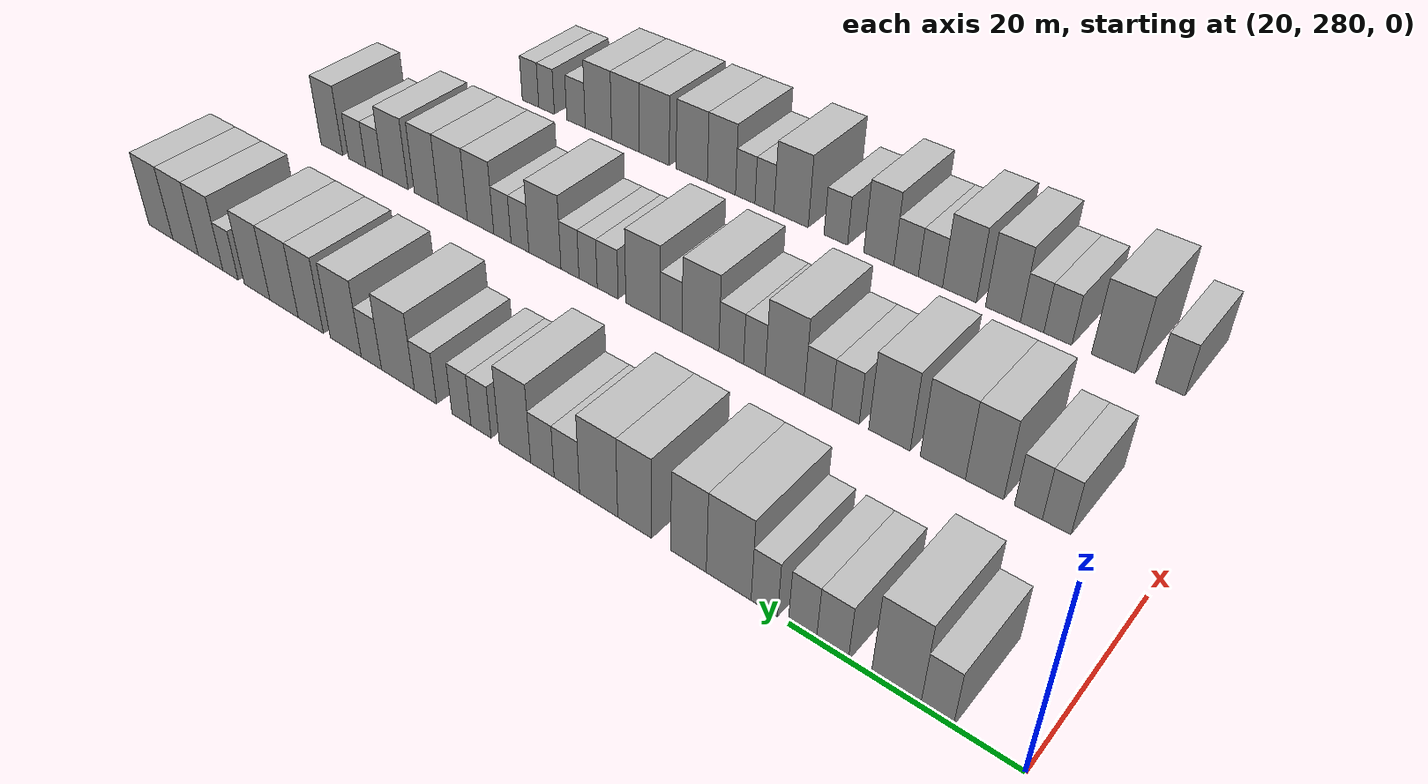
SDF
<sdf version="1.6">
 <world name="default">
  <model name="building_167">
   <static>1</static>
   <pose>25.0000 287.0764 0 0.000000 0.000000 0.000000</pose>
   <link name="link">
    <pose>0 0 3.00 0 0 0</pose>
    <collision name="collision"><geometry><box><size>10.0000 2.7010 6.0000</size></box></geometry></collision>
    <visual name="visual">
     <cast_shadows>0</cast_shadows>
     <geometry><box><size>10.0000 2.7010 6.0000</size></box></geometry>
     <material>
      <script>
       <uri>model://HANNAS_wall/materials/scripts</uri>
       <uri>model://HANNAS_wall/materials/textures</uri>
       <name>vrc/HANNAS_wall</name>
      </script>
     </material>
    </visual>
   </link>
  </model>
  <model name="building_168">
   <static>1</static>
   <pose>25.0000 290.5283 0 0.000000 0.000000 0.000000</pose>
   <link name="link">
    <pose>0 0 4.50 0 0 0</pose>
    <collision name="collision"><geometry><box><size>10.0000 4.2030 9.0000</size></box></geometry></collision>
    <visual name="visual">
     <cast_shadows>0</cast_shadows>
     <geometry><box><size>10.0000 4.2030 9.0000</size></box></geometry>
     <material>
      <script>
       <uri>model://HANNAS_wall/materials/scripts</uri>
       <uri>model://HANNAS_wall/materials/textures</uri>
       <name>vrc/HANNAS_wall</name>
      </script>
     </material>
    </visual>
   </link>
  </model>
  <model name="building_169">
   <static>1</static>
   <pose>25.0000 296.0642 0 0.000000 0.000000 0.000000</pose>
   <link name="link">
    <pose>0 0 3.00 0 0 0</pose>
    <collision name="collision"><geometry><box><size>10.0000 2.8687 6.0000</size></box></geometry></collision>
    <visual name="visual">
     <cast_shadows>0</cast_shadows>
     <geometry><box><size>10.0000 2.8687 6.0000</size></box></geometry>
     <material>
      <script>
       <uri>model://HANNAS_wall/materials/scripts</uri>
       <uri>model://HANNAS_wall/materials/textures</uri>
       <name>vrc/HANNAS_wall</name>
      </script>
     </material>
    </visual>
   </link>
  </model>
  <model name="building_170">
   <static>1</static>
   <pose>25.0000 298.7918 0 0.000000 0.000000 0.000000</pose>
   <link name="link">
    <pose>0 0 3.00 0 0 0</pose>
    <collision name="collision"><geometry><box><size>10.0000 2.5866 6.0000</size></box></geometry></collision>
    <visual name="visual">
     <cast_shadows>0</cast_shadows>
     <geometry><box><size>10.0000 2.5866 6.0000</size></box></geometry>
     <material>
      <script>
       <uri>model://HANNAS_wall/materials/scripts</uri>
       <uri>model://HANNAS_wall/materials/textures</uri>
       <name>vrc/HANNAS_wall</name>
      </script>
     </material>
    </visual>
   </link>
  </model>
  <model name="building_171">
   <static>1</static>
   <pose>25.0000 302.3446 0 0.000000 0.000000 0.000000</pose>
   <link name="link">
    <pose>0 0 3.00 0 0 0</pose>
    <collision name="collision"><geometry><box><size>10.0000 2.5190 6.0000</size></box></geometry></collision>
    <visual name="visual">
     <cast_shadows>0</cast_shadows>
     <geometry><box><size>10.0000 2.5190 6.0000</size></box></geometry>
     <material>
      <script>
       <uri>model://HANNAS_wall/materials/scripts</uri>
       <uri>model://HANNAS_wall/materials/textures</uri>
       <name>vrc/HANNAS_wall</name>
      </script>
     </material>
    </visual>
   </link>
  </model>
  <model name="building_172">
   <static>1</static>
   <pose>25.0000 305.8086 0 0.000000 0.000000 0.000000</pose>
   <link name="link">
    <pose>0 0 4.50 0 0 0</pose>
    <collision name="collision"><geometry><box><size>10.0000 4.4089 9.0000</size></box></geometry></collision>
    <visual name="visual">
     <cast_shadows>0</cast_shadows>
     <geometry><box><size>10.0000 4.4089 9.0000</size></box></geometry>
     <material>
      <script>
       <uri>model://HANNAS_wall/materials/scripts</uri>
       <uri>model://HANNAS_wall/materials/textures</uri>
       <name>vrc/HANNAS_wall</name>
      </script>
     </material>
    </visual>
   </link>
  </model>
  <model name="building_173">
   <static>1</static>
   <pose>25.0000 309.8165 0 0.000000 0.000000 0.000000</pose>
   <link name="link">
    <pose>0 0 4.50 0 0 0</pose>
    <collision name="collision"><geometry><box><size>10.0000 3.6070 9.0000</size></box></geometry></collision>
    <visual name="visual">
     <cast_shadows>0</cast_shadows>
     <geometry><box><size>10.0000 3.6070 9.0000</size></box></geometry>
     <material>
      <script>
       <uri>model://HANNAS_wall/materials/scripts</uri>
       <uri>model://HANNAS_wall/materials/textures</uri>
       <name>vrc/HANNAS_wall</name>
      </script>
     </material>
    </visual>
   </link>
  </model>
  <model name="building_174">
   <static>1</static>
   <pose>25.0000 315.4411 0 0.000000 0.000000 0.000000</pose>
   <link name="link">
    <pose>0 0 4.50 0 0 0</pose>
    <collision name="collision"><geometry><box><size>10.0000 3.6422 9.0000</size></box></geometry></collision>
    <visual name="visual">
     <cast_shadows>0</cast_shadows>
     <geometry><box><size>10.0000 3.6422 9.0000</size></box></geometry>
     <material>
      <script>
       <uri>model://HANNAS_wall/materials/scripts</uri>
       <uri>model://HANNAS_wall/materials/textures</uri>
       <name>vrc/HANNAS_wall</name>
      </script>
     </material>
    </visual>
   </link>
  </model>
  <model name="building_175">
   <static>1</static>
   <pose>25.0000 319.3794 0 0.000000 0.000000 0.000000</pose>
   <link name="link">
    <pose>0 0 4.50 0 0 0</pose>
    <collision name="collision"><geometry><box><size>10.0000 4.2343 9.0000</size></box></geometry></collision>
    <visual name="visual">
     <cast_shadows>0</cast_shadows>
     <geometry><box><size>10.0000 4.2343 9.0000</size></box></geometry>
     <material>
      <script>
       <uri>model://HANNAS_wall/materials/scripts</uri>
       <uri>model://HANNAS_wall/materials/textures</uri>
       <name>vrc/HANNAS_wall</name>
      </script>
     </material>
    </visual>
   </link>
  </model>
  <model name="building_176">
   <static>1</static>
   <pose>25.0000 322.9483 0 0.000000 0.000000 0.000000</pose>
   <link name="link">
    <pose>0 0 3.00 0 0 0</pose>
    <collision name="collision"><geometry><box><size>10.0000 2.9036 6.0000</size></box></geometry></collision>
    <visual name="visual">
     <cast_shadows>0</cast_shadows>
     <geometry><box><size>10.0000 2.9036 6.0000</size></box></geometry>
     <material>
      <script>
       <uri>model://HANNAS_wall/materials/scripts</uri>
       <uri>model://HANNAS_wall/materials/textures</uri>
       <name>vrc/HANNAS_wall</name>
      </script>
     </material>
    </visual>
   </link>
  </model>
  <model name="building_177">
   <static>1</static>
   <pose>25.0000 325.7795 0 0.000000 0.000000 0.000000</pose>
   <link name="link">
    <pose>0 0 3.00 0 0 0</pose>
    <collision name="collision"><geometry><box><size>10.0000 2.7588 6.0000</size></box></geometry></collision>
    <visual name="visual">
     <cast_shadows>0</cast_shadows>
     <geometry><box><size>10.0000 2.7588 6.0000</size></box></geometry>
     <material>
      <script>
       <uri>model://HANNAS_wall/materials/scripts</uri>
       <uri>model://HANNAS_wall/materials/textures</uri>
       <name>vrc/HANNAS_wall</name>
      </script>
     </material>
    </visual>
   </link>
  </model>
  <model name="building_178">
   <static>1</static>
   <pose>25.0000 329.0461 0 0.000000 0.000000 0.000000</pose>
   <link name="link">
    <pose>0 0 4.50 0 0 0</pose>
    <collision name="collision"><geometry><box><size>10.0000 3.7744 9.0000</size></box></geometry></collision>
    <visual name="visual">
     <cast_shadows>0</cast_shadows>
     <geometry><box><size>10.0000 3.7744 9.0000</size></box></geometry>
     <material>
      <script>
       <uri>model://HANNAS_wall/materials/scripts</uri>
       <uri>model://HANNAS_wall/materials/textures</uri>
       <name>vrc/HANNAS_wall</name>
      </script>
     </material>
    </visual>
   </link>
  </model>
  <model name="building_179">
   <static>1</static>
   <pose>25.0000 333.1919 0 0.000000 0.000000 0.000000</pose>
   <link name="link">
    <pose>0 0 3.00 0 0 0</pose>
    <collision name="collision"><geometry><box><size>10.0000 2.5172 6.0000</size></box></geometry></collision>
    <visual name="visual">
     <cast_shadows>0</cast_shadows>
     <geometry><box><size>10.0000 2.5172 6.0000</size></box></geometry>
     <material>
      <script>
       <uri>model://HANNAS_wall/materials/scripts</uri>
       <uri>model://HANNAS_wall/materials/textures</uri>
       <name>vrc/HANNAS_wall</name>
      </script>
     </material>
    </visual>
   </link>
  </model>
  <model name="building_180">
   <static>1</static>
   <pose>25.0000 335.6580 0 0.000000 0.000000 0.000000</pose>
   <link name="link">
    <pose>0 0 3.00 0 0 0</pose>
    <collision name="collision"><geometry><box><size>10.0000 2.4151 6.0000</size></box></geometry></collision>
    <visual name="visual">
     <cast_shadows>0</cast_shadows>
     <geometry><box><size>10.0000 2.4151 6.0000</size></box></geometry>
     <material>
      <script>
       <uri>model://HANNAS_wall/materials/scripts</uri>
       <uri>model://HANNAS_wall/materials/textures</uri>
       <name>vrc/HANNAS_wall</name>
      </script>
     </material>
    </visual>
   </link>
  </model>
  <model name="building_181">
   <static>1</static>
   <pose>25.0000 340.3247 0 0.000000 0.000000 0.000000</pose>
   <link name="link">
    <pose>0 0 3.00 0 0 0</pose>
    <collision name="collision"><geometry><box><size>10.0000 2.9182 6.0000</size></box></geometry></collision>
    <visual name="visual">
     <cast_shadows>0</cast_shadows>
     <geometry><box><size>10.0000 2.9182 6.0000</size></box></geometry>
     <material>
      <script>
       <uri>model://HANNAS_wall/materials/scripts</uri>
       <uri>model://HANNAS_wall/materials/textures</uri>
       <name>vrc/HANNAS_wall</name>
      </script>
     </material>
    </visual>
   </link>
  </model>
  <model name="building_182">
   <static>1</static>
   <pose>25.0000 344.0215 0 0.000000 0.000000 0.000000</pose>
   <link name="link">
    <pose>0 0 4.50 0 0 0</pose>
    <collision name="collision"><geometry><box><size>10.0000 4.4755 9.0000</size></box></geometry></collision>
    <visual name="visual">
     <cast_shadows>0</cast_shadows>
     <geometry><box><size>10.0000 4.4755 9.0000</size></box></geometry>
     <material>
      <script>
       <uri>model://HANNAS_wall/materials/scripts</uri>
       <uri>model://HANNAS_wall/materials/textures</uri>
       <name>vrc/HANNAS_wall</name>
      </script>
     </material>
    </visual>
   </link>
  </model>
  <model name="building_183">
   <static>1</static>
   <pose>25.0000 347.6754 0 0.000000 0.000000 0.000000</pose>
   <link name="link">
    <pose>0 0 3.00 0 0 0</pose>
    <collision name="collision"><geometry><box><size>10.0000 2.8323 6.0000</size></box></geometry></collision>
    <visual name="visual">
     <cast_shadows>0</cast_shadows>
     <geometry><box><size>10.0000 2.8323 6.0000</size></box></geometry>
     <material>
      <script>
       <uri>model://HANNAS_wall/materials/scripts</uri>
       <uri>model://HANNAS_wall/materials/textures</uri>
       <name>vrc/HANNAS_wall</name>
      </script>
     </material>
    </visual>
   </link>
  </model>
  <model name="building_184">
   <static>1</static>
   <pose>25.0000 351.3204 0 0.000000 0.000000 0.000000</pose>
   <link name="link">
    <pose>0 0 4.50 0 0 0</pose>
    <collision name="collision"><geometry><box><size>10.0000 4.4579 9.0000</size></box></geometry></collision>
    <visual name="visual">
     <cast_shadows>0</cast_shadows>
     <geometry><box><size>10.0000 4.4579 9.0000</size></box></geometry>
     <material>
      <script>
       <uri>model://HANNAS_wall/materials/scripts</uri>
       <uri>model://HANNAS_wall/materials/textures</uri>
       <name>vrc/HANNAS_wall</name>
      </script>
     </material>
    </visual>
   </link>
  </model>
  <model name="building_185">
   <static>1</static>
   <pose>25.0000 356.4243 0 0.000000 0.000000 0.000000</pose>
   <link name="link">
    <pose>0 0 4.50 0 0 0</pose>
    <collision name="collision"><geometry><box><size>10.0000 3.7499 9.0000</size></box></geometry></collision>
    <visual name="visual">
     <cast_shadows>0</cast_shadows>
     <geometry><box><size>10.0000 3.7499 9.0000</size></box></geometry>
     <material>
      <script>
       <uri>model://HANNAS_wall/materials/scripts</uri>
       <uri>model://HANNAS_wall/materials/textures</uri>
       <name>vrc/HANNAS_wall</name>
      </script>
     </material>
    </visual>
   </link>
  </model>
  <model name="building_186">
   <static>1</static>
   <pose>25.0000 360.4903 0 0.000000 0.000000 0.000000</pose>
   <link name="link">
    <pose>0 0 4.50 0 0 0</pose>
    <collision name="collision"><geometry><box><size>10.0000 4.3821 9.0000</size></box></geometry></collision>
    <visual name="visual">
     <cast_shadows>0</cast_shadows>
     <geometry><box><size>10.0000 4.3821 9.0000</size></box></geometry>
     <material>
      <script>
       <uri>model://HANNAS_wall/materials/scripts</uri>
       <uri>model://HANNAS_wall/materials/textures</uri>
       <name>vrc/HANNAS_wall</name>
      </script>
     </material>
    </visual>
   </link>
  </model>
  <model name="building_187">
   <static>1</static>
   <pose>25.0000 364.7096 0 0.000000 0.000000 0.000000</pose>
   <link name="link">
    <pose>0 0 4.50 0 0 0</pose>
    <collision name="collision"><geometry><box><size>10.0000 4.0564 9.0000</size></box></geometry></collision>
    <visual name="visual">
     <cast_shadows>0</cast_shadows>
     <geometry><box><size>10.0000 4.0564 9.0000</size></box></geometry>
     <material>
      <script>
       <uri>model://HANNAS_wall/materials/scripts</uri>
       <uri>model://HANNAS_wall/materials/textures</uri>
       <name>vrc/HANNAS_wall</name>
      </script>
     </material>
    </visual>
   </link>
  </model>
  <model name="building_188">
   <static>1</static>
   <pose>25.0000 368.9909 0 0.000000 0.000000 0.000000</pose>
   <link name="link">
    <pose>0 0 3.00 0 0 0</pose>
    <collision name="collision"><geometry><box><size>10.0000 2.5064 6.0000</size></box></geometry></collision>
    <visual name="visual">
     <cast_shadows>0</cast_shadows>
     <geometry><box><size>10.0000 2.5064 6.0000</size></box></geometry>
     <material>
      <script>
       <uri>model://HANNAS_wall/materials/scripts</uri>
       <uri>model://HANNAS_wall/materials/textures</uri>
       <name>vrc/HANNAS_wall</name>
      </script>
     </material>
    </visual>
   </link>
  </model>
  <model name="building_189">
   <static>1</static>
   <pose>25.0000 372.2982 0 0.000000 0.000000 0.000000</pose>
   <link name="link">
    <pose>0 0 4.50 0 0 0</pose>
    <collision name="collision"><geometry><box><size>10.0000 4.1082 9.0000</size></box></geometry></collision>
    <visual name="visual">
     <cast_shadows>0</cast_shadows>
     <geometry><box><size>10.0000 4.1082 9.0000</size></box></geometry>
     <material>
      <script>
       <uri>model://HANNAS_wall/materials/scripts</uri>
       <uri>model://HANNAS_wall/materials/textures</uri>
       <name>vrc/HANNAS_wall</name>
      </script>
     </material>
    </visual>
   </link>
  </model>
  <model name="building_190">
   <static>1</static>
   <pose>25.0000 376.5505 0 0.000000 0.000000 0.000000</pose>
   <link name="link">
    <pose>0 0 4.50 0 0 0</pose>
    <collision name="collision"><geometry><box><size>10.0000 4.3965 9.0000</size></box></geometry></collision>
    <visual name="visual">
     <cast_shadows>0</cast_shadows>
     <geometry><box><size>10.0000 4.3965 9.0000</size></box></geometry>
     <material>
      <script>
       <uri>model://HANNAS_wall/materials/scripts</uri>
       <uri>model://HANNAS_wall/materials/textures</uri>
       <name>vrc/HANNAS_wall</name>
      </script>
     </material>
    </visual>
   </link>
  </model>
  <model name="building_191">
   <static>1</static>
   <pose>25.0000 380.8715 0 0.000000 0.000000 0.000000</pose>
   <link name="link">
    <pose>0 0 4.50 0 0 0</pose>
    <collision name="collision"><geometry><box><size>10.0000 4.2454 9.0000</size></box></geometry></collision>
    <visual name="visual">
     <cast_shadows>0</cast_shadows>
     <geometry><box><size>10.0000 4.2454 9.0000</size></box></geometry>
     <material>
      <script>
       <uri>model://HANNAS_wall/materials/scripts</uri>
       <uri>model://HANNAS_wall/materials/textures</uri>
       <name>vrc/HANNAS_wall</name>
      </script>
     </material>
    </visual>
   </link>
  </model>
  <model name="building_360">
   <static>1</static>
   <pose>47.0000 288.7692 0 0.000000 0.000000 0.000000</pose>
   <link name="link">
    <pose>0 0 3.00 0 0 0</pose>
    <collision name="collision"><geometry><box><size>10.0000 2.5682 6.0000</size></box></geometry></collision>
    <visual name="visual">
     <cast_shadows>0</cast_shadows>
     <geometry><box><size>10.0000 2.5682 6.0000</size></box></geometry>
     <material>
      <script>
       <uri>model://HANNAS_wall/materials/scripts</uri>
       <uri>model://HANNAS_wall/materials/textures</uri>
       <name>vrc/HANNAS_wall</name>
      </script>
     </material>
    </visual>
   </link>
  </model>
  <model name="building_361">
   <static>1</static>
   <pose>47.0000 291.3350 0 0.000000 0.000000 0.000000</pose>
   <link name="link">
    <pose>0 0 3.00 0 0 0</pose>
    <collision name="collision"><geometry><box><size>10.0000 2.5634 6.0000</size></box></geometry></collision>
    <visual name="visual">
     <cast_shadows>0</cast_shadows>
     <geometry><box><size>10.0000 2.5634 6.0000</size></box></geometry>
     <material>
      <script>
       <uri>model://HANNAS_wall/materials/scripts</uri>
       <uri>model://HANNAS_wall/materials/textures</uri>
       <name>vrc/HANNAS_wall</name>
      </script>
     </material>
    </visual>
   </link>
  </model>
  <model name="building_362">
   <static>1</static>
   <pose>47.0000 295.4322 0 0.000000 0.000000 0.000000</pose>
   <link name="link">
    <pose>0 0 4.50 0 0 0</pose>
    <collision name="collision"><geometry><box><size>10.0000 3.6308 9.0000</size></box></geometry></collision>
    <visual name="visual">
     <cast_shadows>0</cast_shadows>
     <geometry><box><size>10.0000 3.6308 9.0000</size></box></geometry>
     <material>
      <script>
       <uri>model://HANNAS_wall/materials/scripts</uri>
       <uri>model://HANNAS_wall/materials/textures</uri>
       <name>vrc/HANNAS_wall</name>
      </script>
     </material>
    </visual>
   </link>
  </model>
  <model name="building_363">
   <static>1</static>
   <pose>47.0000 299.4655 0 0.000000 0.000000 0.000000</pose>
   <link name="link">
    <pose>0 0 4.50 0 0 0</pose>
    <collision name="collision"><geometry><box><size>10.0000 4.4358 9.0000</size></box></geometry></collision>
    <visual name="visual">
     <cast_shadows>0</cast_shadows>
     <geometry><box><size>10.0000 4.4358 9.0000</size></box></geometry>
     <material>
      <script>
       <uri>model://HANNAS_wall/materials/scripts</uri>
       <uri>model://HANNAS_wall/materials/textures</uri>
       <name>vrc/HANNAS_wall</name>
      </script>
     </material>
    </visual>
   </link>
  </model>
  <model name="building_364">
   <static>1</static>
   <pose>47.0000 304.8135 0 0.000000 0.000000 0.000000</pose>
   <link name="link">
    <pose>0 0 4.50 0 0 0</pose>
    <collision name="collision"><geometry><box><size>10.0000 4.2603 9.0000</size></box></geometry></collision>
    <visual name="visual">
     <cast_shadows>0</cast_shadows>
     <geometry><box><size>10.0000 4.2603 9.0000</size></box></geometry>
     <material>
      <script>
       <uri>model://HANNAS_wall/materials/scripts</uri>
       <uri>model://HANNAS_wall/materials/textures</uri>
       <name>vrc/HANNAS_wall</name>
      </script>
     </material>
    </visual>
   </link>
  </model>
  <model name="building_365">
   <static>1</static>
   <pose>47.0000 309.4126 0 0.000000 0.000000 0.000000</pose>
   <link name="link">
    <pose>0 0 3.00 0 0 0</pose>
    <collision name="collision"><geometry><box><size>10.0000 2.9379 6.0000</size></box></geometry></collision>
    <visual name="visual">
     <cast_shadows>0</cast_shadows>
     <geometry><box><size>10.0000 2.9379 6.0000</size></box></geometry>
     <material>
      <script>
       <uri>model://HANNAS_wall/materials/scripts</uri>
       <uri>model://HANNAS_wall/materials/textures</uri>
       <name>vrc/HANNAS_wall</name>
      </script>
     </material>
    </visual>
   </link>
  </model>
  <model name="building_366">
   <static>1</static>
   <pose>47.0000 312.3714 0 0.000000 0.000000 0.000000</pose>
   <link name="link">
    <pose>0 0 3.00 0 0 0</pose>
    <collision name="collision"><geometry><box><size>10.0000 2.9797 6.0000</size></box></geometry></collision>
    <visual name="visual">
     <cast_shadows>0</cast_shadows>
     <geometry><box><size>10.0000 2.9797 6.0000</size></box></geometry>
     <material>
      <script>
       <uri>model://HANNAS_wall/materials/scripts</uri>
       <uri>model://HANNAS_wall/materials/textures</uri>
       <name>vrc/HANNAS_wall</name>
      </script>
     </material>
    </visual>
   </link>
  </model>
  <model name="building_367">
   <static>1</static>
   <pose>47.0000 316.0532 0 0.000000 0.000000 0.000000</pose>
   <link name="link">
    <pose>0 0 4.50 0 0 0</pose>
    <collision name="collision"><geometry><box><size>10.0000 4.3840 9.0000</size></box></geometry></collision>
    <visual name="visual">
     <cast_shadows>0</cast_shadows>
     <geometry><box><size>10.0000 4.3840 9.0000</size></box></geometry>
     <material>
      <script>
       <uri>model://HANNAS_wall/materials/scripts</uri>
       <uri>model://HANNAS_wall/materials/textures</uri>
       <name>vrc/HANNAS_wall</name>
      </script>
     </material>
    </visual>
   </link>
  </model>
  <model name="building_368">
   <static>1</static>
   <pose>47.0000 319.4929 0 0.000000 0.000000 0.000000</pose>
   <link name="link">
    <pose>0 0 3.00 0 0 0</pose>
    <collision name="collision"><geometry><box><size>10.0000 2.4954 6.0000</size></box></geometry></collision>
    <visual name="visual">
     <cast_shadows>0</cast_shadows>
     <geometry><box><size>10.0000 2.4954 6.0000</size></box></geometry>
     <material>
      <script>
       <uri>model://HANNAS_wall/materials/scripts</uri>
       <uri>model://HANNAS_wall/materials/textures</uri>
       <name>vrc/HANNAS_wall</name>
      </script>
     </material>
    </visual>
   </link>
  </model>
  <model name="building_369">
   <static>1</static>
   <pose>47.0000 322.1953 0 0.000000 0.000000 0.000000</pose>
   <link name="link">
    <pose>0 0 3.00 0 0 0</pose>
    <collision name="collision"><geometry><box><size>10.0000 2.9094 6.0000</size></box></geometry></collision>
    <visual name="visual">
     <cast_shadows>0</cast_shadows>
     <geometry><box><size>10.0000 2.9094 6.0000</size></box></geometry>
     <material>
      <script>
       <uri>model://HANNAS_wall/materials/scripts</uri>
       <uri>model://HANNAS_wall/materials/textures</uri>
       <name>vrc/HANNAS_wall</name>
      </script>
     </material>
    </visual>
   </link>
  </model>
  <model name="building_370">
   <static>1</static>
   <pose>47.0000 325.8781 0 0.000000 0.000000 0.000000</pose>
   <link name="link">
    <pose>0 0 4.50 0 0 0</pose>
    <collision name="collision"><geometry><box><size>10.0000 4.4561 9.0000</size></box></geometry></collision>
    <visual name="visual">
     <cast_shadows>0</cast_shadows>
     <geometry><box><size>10.0000 4.4561 9.0000</size></box></geometry>
     <material>
      <script>
       <uri>model://HANNAS_wall/materials/scripts</uri>
       <uri>model://HANNAS_wall/materials/textures</uri>
       <name>vrc/HANNAS_wall</name>
      </script>
     </material>
    </visual>
   </link>
  </model>
  <model name="building_371">
   <static>1</static>
   <pose>47.0000 329.4406 0 0.000000 0.000000 0.000000</pose>
   <link name="link">
    <pose>0 0 3.00 0 0 0</pose>
    <collision name="collision"><geometry><box><size>10.0000 2.6689 6.0000</size></box></geometry></collision>
    <visual name="visual">
     <cast_shadows>0</cast_shadows>
     <geometry><box><size>10.0000 2.6689 6.0000</size></box></geometry>
     <material>
      <script>
       <uri>model://HANNAS_wall/materials/scripts</uri>
       <uri>model://HANNAS_wall/materials/textures</uri>
       <name>vrc/HANNAS_wall</name>
      </script>
     </material>
    </visual>
   </link>
  </model>
  <model name="building_372">
   <static>1</static>
   <pose>47.0000 332.9846 0 0.000000 0.000000 0.000000</pose>
   <link name="link">
    <pose>0 0 4.50 0 0 0</pose>
    <collision name="collision"><geometry><box><size>10.0000 4.4192 9.0000</size></box></geometry></collision>
    <visual name="visual">
     <cast_shadows>0</cast_shadows>
     <geometry><box><size>10.0000 4.4192 9.0000</size></box></geometry>
     <material>
      <script>
       <uri>model://HANNAS_wall/materials/scripts</uri>
       <uri>model://HANNAS_wall/materials/textures</uri>
       <name>vrc/HANNAS_wall</name>
      </script>
     </material>
    </visual>
   </link>
  </model>
  <model name="building_373">
   <static>1</static>
   <pose>47.0000 337.5754 0 0.000000 0.000000 0.000000</pose>
   <link name="link">
    <pose>0 0 3.00 0 0 0</pose>
    <collision name="collision"><geometry><box><size>10.0000 2.7623 6.0000</size></box></geometry></collision>
    <visual name="visual">
     <cast_shadows>0</cast_shadows>
     <geometry><box><size>10.0000 2.7623 6.0000</size></box></geometry>
     <material>
      <script>
       <uri>model://HANNAS_wall/materials/scripts</uri>
       <uri>model://HANNAS_wall/materials/textures</uri>
       <name>vrc/HANNAS_wall</name>
      </script>
     </material>
    </visual>
   </link>
  </model>
  <model name="building_374">
   <static>1</static>
   <pose>47.0000 340.1794 0 0.000000 0.000000 0.000000</pose>
   <link name="link">
    <pose>0 0 3.00 0 0 0</pose>
    <collision name="collision"><geometry><box><size>10.0000 2.4457 6.0000</size></box></geometry></collision>
    <visual name="visual">
     <cast_shadows>0</cast_shadows>
     <geometry><box><size>10.0000 2.4457 6.0000</size></box></geometry>
     <material>
      <script>
       <uri>model://HANNAS_wall/materials/scripts</uri>
       <uri>model://HANNAS_wall/materials/textures</uri>
       <name>vrc/HANNAS_wall</name>
      </script>
     </material>
    </visual>
   </link>
  </model>
  <model name="building_375">
   <static>1</static>
   <pose>47.0000 342.6363 0 0.000000 0.000000 0.000000</pose>
   <link name="link">
    <pose>0 0 3.00 0 0 0</pose>
    <collision name="collision"><geometry><box><size>10.0000 2.4681 6.0000</size></box></geometry></collision>
    <visual name="visual">
     <cast_shadows>0</cast_shadows>
     <geometry><box><size>10.0000 2.4681 6.0000</size></box></geometry>
     <material>
      <script>
       <uri>model://HANNAS_wall/materials/scripts</uri>
       <uri>model://HANNAS_wall/materials/textures</uri>
       <name>vrc/HANNAS_wall</name>
      </script>
     </material>
    </visual>
   </link>
  </model>
  <model name="building_376">
   <static>1</static>
   <pose>47.0000 346.1176 0 0.000000 0.000000 0.000000</pose>
   <link name="link">
    <pose>0 0 4.50 0 0 0</pose>
    <collision name="collision"><geometry><box><size>10.0000 4.4945 9.0000</size></box></geometry></collision>
    <visual name="visual">
     <cast_shadows>0</cast_shadows>
     <geometry><box><size>10.0000 4.4945 9.0000</size></box></geometry>
     <material>
      <script>
       <uri>model://HANNAS_wall/materials/scripts</uri>
       <uri>model://HANNAS_wall/materials/textures</uri>
       <name>vrc/HANNAS_wall</name>
      </script>
     </material>
    </visual>
   </link>
  </model>
  <model name="building_377">
   <static>1</static>
   <pose>47.0000 349.6488 0 0.000000 0.000000 0.000000</pose>
   <link name="link">
    <pose>0 0 3.00 0 0 0</pose>
    <collision name="collision"><geometry><box><size>10.0000 2.5678 6.0000</size></box></geometry></collision>
    <visual name="visual">
     <cast_shadows>0</cast_shadows>
     <geometry><box><size>10.0000 2.5678 6.0000</size></box></geometry>
     <material>
      <script>
       <uri>model://HANNAS_wall/materials/scripts</uri>
       <uri>model://HANNAS_wall/materials/textures</uri>
       <name>vrc/HANNAS_wall</name>
      </script>
     </material>
    </visual>
   </link>
  </model>
  <model name="building_378">
   <static>1</static>
   <pose>47.0000 352.1927 0 0.000000 0.000000 0.000000</pose>
   <link name="link">
    <pose>0 0 3.00 0 0 0</pose>
    <collision name="collision"><geometry><box><size>10.0000 2.5201 6.0000</size></box></geometry></collision>
    <visual name="visual">
     <cast_shadows>0</cast_shadows>
     <geometry><box><size>10.0000 2.5201 6.0000</size></box></geometry>
     <material>
      <script>
       <uri>model://HANNAS_wall/materials/scripts</uri>
       <uri>model://HANNAS_wall/materials/textures</uri>
       <name>vrc/HANNAS_wall</name>
      </script>
     </material>
    </visual>
   </link>
  </model>
  <model name="building_379">
   <static>1</static>
   <pose>47.0000 355.4312 0 0.000000 0.000000 0.000000</pose>
   <link name="link">
    <pose>0 0 4.50 0 0 0</pose>
    <collision name="collision"><geometry><box><size>10.0000 3.9568 9.0000</size></box></geometry></collision>
    <visual name="visual">
     <cast_shadows>0</cast_shadows>
     <geometry><box><size>10.0000 3.9568 9.0000</size></box></geometry>
     <material>
      <script>
       <uri>model://HANNAS_wall/materials/scripts</uri>
       <uri>model://HANNAS_wall/materials/textures</uri>
       <name>vrc/HANNAS_wall</name>
      </script>
     </material>
    </visual>
   </link>
  </model>
  <model name="building_380">
   <static>1</static>
   <pose>47.0000 359.6219 0 0.000000 0.000000 0.000000</pose>
   <link name="link">
    <pose>0 0 4.50 0 0 0</pose>
    <collision name="collision"><geometry><box><size>10.0000 4.4246 9.0000</size></box></geometry></collision>
    <visual name="visual">
     <cast_shadows>0</cast_shadows>
     <geometry><box><size>10.0000 4.4246 9.0000</size></box></geometry>
     <material>
      <script>
       <uri>model://HANNAS_wall/materials/scripts</uri>
       <uri>model://HANNAS_wall/materials/textures</uri>
       <name>vrc/HANNAS_wall</name>
      </script>
     </material>
    </visual>
   </link>
  </model>
  <model name="building_381">
   <static>1</static>
   <pose>47.0000 363.7533 0 0.000000 0.000000 0.000000</pose>
   <link name="link">
    <pose>0 0 4.50 0 0 0</pose>
    <collision name="collision"><geometry><box><size>10.0000 3.8381 9.0000</size></box></geometry></collision>
    <visual name="visual">
     <cast_shadows>0</cast_shadows>
     <geometry><box><size>10.0000 3.8381 9.0000</size></box></geometry>
     <material>
      <script>
       <uri>model://HANNAS_wall/materials/scripts</uri>
       <uri>model://HANNAS_wall/materials/textures</uri>
       <name>vrc/HANNAS_wall</name>
      </script>
     </material>
    </visual>
   </link>
  </model>
  <model name="building_382">
   <static>1</static>
   <pose>47.0000 368.7527 0 0.000000 0.000000 0.000000</pose>
   <link name="link">
    <pose>0 0 4.50 0 0 0</pose>
    <collision name="collision"><geometry><box><size>10.0000 4.1607 9.0000</size></box></geometry></collision>
    <visual name="visual">
     <cast_shadows>0</cast_shadows>
     <geometry><box><size>10.0000 4.1607 9.0000</size></box></geometry>
     <material>
      <script>
       <uri>model://HANNAS_wall/materials/scripts</uri>
       <uri>model://HANNAS_wall/materials/textures</uri>
       <name>vrc/HANNAS_wall</name>
      </script>
     </material>
    </visual>
   </link>
  </model>
  <model name="building_383">
   <static>1</static>
   <pose>47.0000 372.2393 0 0.000000 0.000000 0.000000</pose>
   <link name="link">
    <pose>0 0 3.00 0 0 0</pose>
    <collision name="collision"><geometry><box><size>10.0000 2.8126 6.0000</size></box></geometry></collision>
    <visual name="visual">
     <cast_shadows>0</cast_shadows>
     <geometry><box><size>10.0000 2.8126 6.0000</size></box></geometry>
     <material>
      <script>
       <uri>model://HANNAS_wall/materials/scripts</uri>
       <uri>model://HANNAS_wall/materials/textures</uri>
       <name>vrc/HANNAS_wall</name>
      </script>
     </material>
    </visual>
   </link>
  </model>
  <model name="building_384">
   <static>1</static>
   <pose>47.0000 375.1206 0 0.000000 0.000000 0.000000</pose>
   <link name="link">
    <pose>0 0 3.00 0 0 0</pose>
    <collision name="collision"><geometry><box><size>10.0000 2.9498 6.0000</size></box></geometry></collision>
    <visual name="visual">
     <cast_shadows>0</cast_shadows>
     <geometry><box><size>10.0000 2.9498 6.0000</size></box></geometry>
     <material>
      <script>
       <uri>model://HANNAS_wall/materials/scripts</uri>
       <uri>model://HANNAS_wall/materials/textures</uri>
       <name>vrc/HANNAS_wall</name>
      </script>
     </material>
    </visual>
   </link>
  </model>
  <model name="building_385">
   <static>1</static>
   <pose>47.0000 379.4881 0 0.000000 0.000000 0.000000</pose>
   <link name="link">
    <pose>0 0 4.50 0 0 0</pose>
    <collision name="collision"><geometry><box><size>10.0000 3.7852 9.0000</size></box></geometry></collision>
    <visual name="visual">
     <cast_shadows>0</cast_shadows>
     <geometry><box><size>10.0000 3.7852 9.0000</size></box></geometry>
     <material>
      <script>
       <uri>model://HANNAS_wall/materials/scripts</uri>
       <uri>model://HANNAS_wall/materials/textures</uri>
       <name>vrc/HANNAS_wall</name>
      </script>
     </material>
    </visual>
   </link>
  </model>
  <model name="building_554">
   <static>1</static>
   <pose>69.0000 288.5018 0 0.000000 0.000000 0.000000</pose>
   <link name="link">
    <pose>0 0 3.00 0 0 0</pose>
    <collision name="collision"><geometry><box><size>10.0000 2.7988 6.0000</size></box></geometry></collision>
    <visual name="visual">
     <cast_shadows>0</cast_shadows>
     <geometry><box><size>10.0000 2.7988 6.0000</size></box></geometry>
     <material>
      <script>
       <uri>model://HANNAS_wall/materials/scripts</uri>
       <uri>model://HANNAS_wall/materials/textures</uri>
       <name>vrc/HANNAS_wall</name>
      </script>
     </material>
    </visual>
   </link>
  </model>
  <model name="building_555">
   <static>1</static>
   <pose>69.0000 294.0943 0 0.000000 0.000000 0.000000</pose>
   <link name="link">
    <pose>0 0 4.50 0 0 0</pose>
    <collision name="collision"><geometry><box><size>10.0000 4.3862 9.0000</size></box></geometry></collision>
    <visual name="visual">
     <cast_shadows>0</cast_shadows>
     <geometry><box><size>10.0000 4.3862 9.0000</size></box></geometry>
     <material>
      <script>
       <uri>model://HANNAS_wall/materials/scripts</uri>
       <uri>model://HANNAS_wall/materials/textures</uri>
       <name>vrc/HANNAS_wall</name>
      </script>
     </material>
    </visual>
   </link>
  </model>
  <model name="building_556">
   <static>1</static>
   <pose>69.0000 299.7475 0 0.000000 0.000000 0.000000</pose>
   <link name="link">
    <pose>0 0 3.00 0 0 0</pose>
    <collision name="collision"><geometry><box><size>10.0000 2.9203 6.0000</size></box></geometry></collision>
    <visual name="visual">
     <cast_shadows>0</cast_shadows>
     <geometry><box><size>10.0000 2.9203 6.0000</size></box></geometry>
     <material>
      <script>
       <uri>model://HANNAS_wall/materials/scripts</uri>
       <uri>model://HANNAS_wall/materials/textures</uri>
       <name>vrc/HANNAS_wall</name>
      </script>
     </material>
    </visual>
   </link>
  </model>
  <model name="building_557">
   <static>1</static>
   <pose>69.0000 302.4541 0 0.000000 0.000000 0.000000</pose>
   <link name="link">
    <pose>0 0 3.00 0 0 0</pose>
    <collision name="collision"><geometry><box><size>10.0000 2.4930 6.0000</size></box></geometry></collision>
    <visual name="visual">
     <cast_shadows>0</cast_shadows>
     <geometry><box><size>10.0000 2.4930 6.0000</size></box></geometry>
     <material>
      <script>
       <uri>model://HANNAS_wall/materials/scripts</uri>
       <uri>model://HANNAS_wall/materials/textures</uri>
       <name>vrc/HANNAS_wall</name>
      </script>
     </material>
    </visual>
   </link>
  </model>
  <model name="building_558">
   <static>1</static>
   <pose>69.0000 305.6098 0 0.000000 0.000000 0.000000</pose>
   <link name="link">
    <pose>0 0 4.50 0 0 0</pose>
    <collision name="collision"><geometry><box><size>10.0000 3.8184 9.0000</size></box></geometry></collision>
    <visual name="visual">
     <cast_shadows>0</cast_shadows>
     <geometry><box><size>10.0000 3.8184 9.0000</size></box></geometry>
     <material>
      <script>
       <uri>model://HANNAS_wall/materials/scripts</uri>
       <uri>model://HANNAS_wall/materials/textures</uri>
       <name>vrc/HANNAS_wall</name>
      </script>
     </material>
    </visual>
   </link>
  </model>
  <model name="building_559">
   <static>1</static>
   <pose>69.0000 310.4292 0 0.000000 0.000000 0.000000</pose>
   <link name="link">
    <pose>0 0 4.50 0 0 0</pose>
    <collision name="collision"><geometry><box><size>10.0000 3.8204 9.0000</size></box></geometry></collision>
    <visual name="visual">
     <cast_shadows>0</cast_shadows>
     <geometry><box><size>10.0000 3.8204 9.0000</size></box></geometry>
     <material>
      <script>
       <uri>model://HANNAS_wall/materials/scripts</uri>
       <uri>model://HANNAS_wall/materials/textures</uri>
       <name>vrc/HANNAS_wall</name>
      </script>
     </material>
    </visual>
   </link>
  </model>
  <model name="building_560">
   <static>1</static>
   <pose>69.0000 313.7467 0 0.000000 0.000000 0.000000</pose>
   <link name="link">
    <pose>0 0 3.00 0 0 0</pose>
    <collision name="collision"><geometry><box><size>10.0000 2.8146 6.0000</size></box></geometry></collision>
    <visual name="visual">
     <cast_shadows>0</cast_shadows>
     <geometry><box><size>10.0000 2.8146 6.0000</size></box></geometry>
     <material>
      <script>
       <uri>model://HANNAS_wall/materials/scripts</uri>
       <uri>model://HANNAS_wall/materials/textures</uri>
       <name>vrc/HANNAS_wall</name>
      </script>
     </material>
    </visual>
   </link>
  </model>
  <model name="building_561">
   <static>1</static>
   <pose>69.0000 316.5936 0 0.000000 0.000000 0.000000</pose>
   <link name="link">
    <pose>0 0 3.00 0 0 0</pose>
    <collision name="collision"><geometry><box><size>10.0000 2.8794 6.0000</size></box></geometry></collision>
    <visual name="visual">
     <cast_shadows>0</cast_shadows>
     <geometry><box><size>10.0000 2.8794 6.0000</size></box></geometry>
     <material>
      <script>
       <uri>model://HANNAS_wall/materials/scripts</uri>
       <uri>model://HANNAS_wall/materials/textures</uri>
       <name>vrc/HANNAS_wall</name>
      </script>
     </material>
    </visual>
   </link>
  </model>
  <model name="building_562">
   <static>1</static>
   <pose>69.0000 319.8449 0 0.000000 0.000000 0.000000</pose>
   <link name="link">
    <pose>0 0 4.50 0 0 0</pose>
    <collision name="collision"><geometry><box><size>10.0000 3.6232 9.0000</size></box></geometry></collision>
    <visual name="visual">
     <cast_shadows>0</cast_shadows>
     <geometry><box><size>10.0000 3.6232 9.0000</size></box></geometry>
     <material>
      <script>
       <uri>model://HANNAS_wall/materials/scripts</uri>
       <uri>model://HANNAS_wall/materials/textures</uri>
       <name>vrc/HANNAS_wall</name>
      </script>
     </material>
    </visual>
   </link>
  </model>
  <model name="building_563">
   <static>1</static>
   <pose>69.0000 325.1292 0 0.000000 0.000000 0.000000</pose>
   <link name="link">
    <pose>0 0 3.00 0 0 0</pose>
    <collision name="collision"><geometry><box><size>10.0000 2.9454 6.0000</size></box></geometry></collision>
    <visual name="visual">
     <cast_shadows>0</cast_shadows>
     <geometry><box><size>10.0000 2.9454 6.0000</size></box></geometry>
     <material>
      <script>
       <uri>model://HANNAS_wall/materials/scripts</uri>
       <uri>model://HANNAS_wall/materials/textures</uri>
       <name>vrc/HANNAS_wall</name>
      </script>
     </material>
    </visual>
   </link>
  </model>
  <model name="building_564">
   <static>1</static>
   <pose>69.0000 330.8331 0 0.000000 0.000000 0.000000</pose>
   <link name="link">
    <pose>0 0 4.50 0 0 0</pose>
    <collision name="collision"><geometry><box><size>10.0000 4.4626 9.0000</size></box></geometry></collision>
    <visual name="visual">
     <cast_shadows>0</cast_shadows>
     <geometry><box><size>10.0000 4.4626 9.0000</size></box></geometry>
     <material>
      <script>
       <uri>model://HANNAS_wall/materials/scripts</uri>
       <uri>model://HANNAS_wall/materials/textures</uri>
       <name>vrc/HANNAS_wall</name>
      </script>
     </material>
    </visual>
   </link>
  </model>
  <model name="building_565">
   <static>1</static>
   <pose>69.0000 334.3331 0 0.000000 0.000000 0.000000</pose>
   <link name="link">
    <pose>0 0 3.00 0 0 0</pose>
    <collision name="collision"><geometry><box><size>10.0000 2.5374 6.0000</size></box></geometry></collision>
    <visual name="visual">
     <cast_shadows>0</cast_shadows>
     <geometry><box><size>10.0000 2.5374 6.0000</size></box></geometry>
     <material>
      <script>
       <uri>model://HANNAS_wall/materials/scripts</uri>
       <uri>model://HANNAS_wall/materials/textures</uri>
       <name>vrc/HANNAS_wall</name>
      </script>
     </material>
    </visual>
   </link>
  </model>
  <model name="building_566">
   <static>1</static>
   <pose>69.0000 336.9223 0 0.000000 0.000000 0.000000</pose>
   <link name="link">
    <pose>0 0 3.00 0 0 0</pose>
    <collision name="collision"><geometry><box><size>10.0000 2.6410 6.0000</size></box></geometry></collision>
    <visual name="visual">
     <cast_shadows>0</cast_shadows>
     <geometry><box><size>10.0000 2.6410 6.0000</size></box></geometry>
     <material>
      <script>
       <uri>model://HANNAS_wall/materials/scripts</uri>
       <uri>model://HANNAS_wall/materials/textures</uri>
       <name>vrc/HANNAS_wall</name>
      </script>
     </material>
    </visual>
   </link>
  </model>
  <model name="building_567">
   <static>1</static>
   <pose>69.0000 340.1921 0 0.000000 0.000000 0.000000</pose>
   <link name="link">
    <pose>0 0 4.50 0 0 0</pose>
    <collision name="collision"><geometry><box><size>10.0000 3.8986 9.0000</size></box></geometry></collision>
    <visual name="visual">
     <cast_shadows>0</cast_shadows>
     <geometry><box><size>10.0000 3.8986 9.0000</size></box></geometry>
     <material>
      <script>
       <uri>model://HANNAS_wall/materials/scripts</uri>
       <uri>model://HANNAS_wall/materials/textures</uri>
       <name>vrc/HANNAS_wall</name>
      </script>
     </material>
    </visual>
   </link>
  </model>
  <model name="building_568">
   <static>1</static>
   <pose>69.0000 344.3552 0 0.000000 0.000000 0.000000</pose>
   <link name="link">
    <pose>0 0 4.50 0 0 0</pose>
    <collision name="collision"><geometry><box><size>10.0000 4.4278 9.0000</size></box></geometry></collision>
    <visual name="visual">
     <cast_shadows>0</cast_shadows>
     <geometry><box><size>10.0000 4.4278 9.0000</size></box></geometry>
     <material>
      <script>
       <uri>model://HANNAS_wall/materials/scripts</uri>
       <uri>model://HANNAS_wall/materials/textures</uri>
       <name>vrc/HANNAS_wall</name>
      </script>
     </material>
    </visual>
   </link>
  </model>
  <model name="building_569">
   <static>1</static>
   <pose>69.0000 349.7751 0 0.000000 0.000000 0.000000</pose>
   <link name="link">
    <pose>0 0 4.50 0 0 0</pose>
    <collision name="collision"><geometry><box><size>10.0000 4.4120 9.0000</size></box></geometry></collision>
    <visual name="visual">
     <cast_shadows>0</cast_shadows>
     <geometry><box><size>10.0000 4.4120 9.0000</size></box></geometry>
     <material>
      <script>
       <uri>model://HANNAS_wall/materials/scripts</uri>
       <uri>model://HANNAS_wall/materials/textures</uri>
       <name>vrc/HANNAS_wall</name>
      </script>
     </material>
    </visual>
   </link>
  </model>
  <model name="building_570">
   <static>1</static>
   <pose>69.0000 354.0663 0 0.000000 0.000000 0.000000</pose>
   <link name="link">
    <pose>0 0 4.50 0 0 0</pose>
    <collision name="collision"><geometry><box><size>10.0000 4.1706 9.0000</size></box></geometry></collision>
    <visual name="visual">
     <cast_shadows>0</cast_shadows>
     <geometry><box><size>10.0000 4.1706 9.0000</size></box></geometry>
     <material>
      <script>
       <uri>model://HANNAS_wall/materials/scripts</uri>
       <uri>model://HANNAS_wall/materials/textures</uri>
       <name>vrc/HANNAS_wall</name>
      </script>
     </material>
    </visual>
   </link>
  </model>
  <model name="building_571">
   <static>1</static>
   <pose>69.0000 358.2050 0 0.000000 0.000000 0.000000</pose>
   <link name="link">
    <pose>0 0 4.50 0 0 0</pose>
    <collision name="collision"><geometry><box><size>10.0000 4.1067 9.0000</size></box></geometry></collision>
    <visual name="visual">
     <cast_shadows>0</cast_shadows>
     <geometry><box><size>10.0000 4.1067 9.0000</size></box></geometry>
     <material>
      <script>
       <uri>model://HANNAS_wall/materials/scripts</uri>
       <uri>model://HANNAS_wall/materials/textures</uri>
       <name>vrc/HANNAS_wall</name>
      </script>
     </material>
    </visual>
   </link>
  </model>
  <model name="building_572">
   <static>1</static>
   <pose>69.0000 361.7276 0 0.000000 0.000000 0.000000</pose>
   <link name="link">
    <pose>0 0 3.00 0 0 0</pose>
    <collision name="collision"><geometry><box><size>10.0000 2.9385 6.0000</size></box></geometry></collision>
    <visual name="visual">
     <cast_shadows>0</cast_shadows>
     <geometry><box><size>10.0000 2.9385 6.0000</size></box></geometry>
     <material>
      <script>
       <uri>model://HANNAS_wall/materials/scripts</uri>
       <uri>model://HANNAS_wall/materials/textures</uri>
       <name>vrc/HANNAS_wall</name>
      </script>
     </material>
    </visual>
   </link>
  </model>
  <model name="building_573">
   <static>1</static>
   <pose>69.0000 366.4645 0 0.000000 0.000000 0.000000</pose>
   <link name="link">
    <pose>0 0 3.00 0 0 0</pose>
    <collision name="collision"><geometry><box><size>10.0000 2.5353 6.0000</size></box></geometry></collision>
    <visual name="visual">
     <cast_shadows>0</cast_shadows>
     <geometry><box><size>10.0000 2.5353 6.0000</size></box></geometry>
     <material>
      <script>
       <uri>model://HANNAS_wall/materials/scripts</uri>
       <uri>model://HANNAS_wall/materials/textures</uri>
       <name>vrc/HANNAS_wall</name>
      </script>
     </material>
    </visual>
   </link>
  </model>
  <model name="building_574">
   <static>1</static>
   <pose>69.0000 369.1006 0 0.000000 0.000000 0.000000</pose>
   <link name="link">
    <pose>0 0 3.00 0 0 0</pose>
    <collision name="collision"><geometry><box><size>10.0000 2.7369 6.0000</size></box></geometry></collision>
    <visual name="visual">
     <cast_shadows>0</cast_shadows>
     <geometry><box><size>10.0000 2.7369 6.0000</size></box></geometry>
     <material>
      <script>
       <uri>model://HANNAS_wall/materials/scripts</uri>
       <uri>model://HANNAS_wall/materials/textures</uri>
       <name>vrc/HANNAS_wall</name>
      </script>
     </material>
    </visual>
   </link>
  </model>
 </world>
</sdf>
